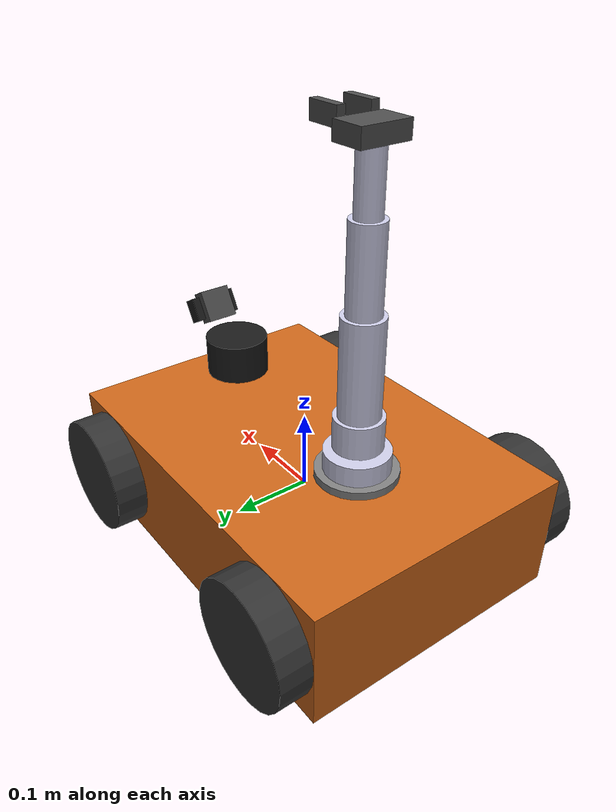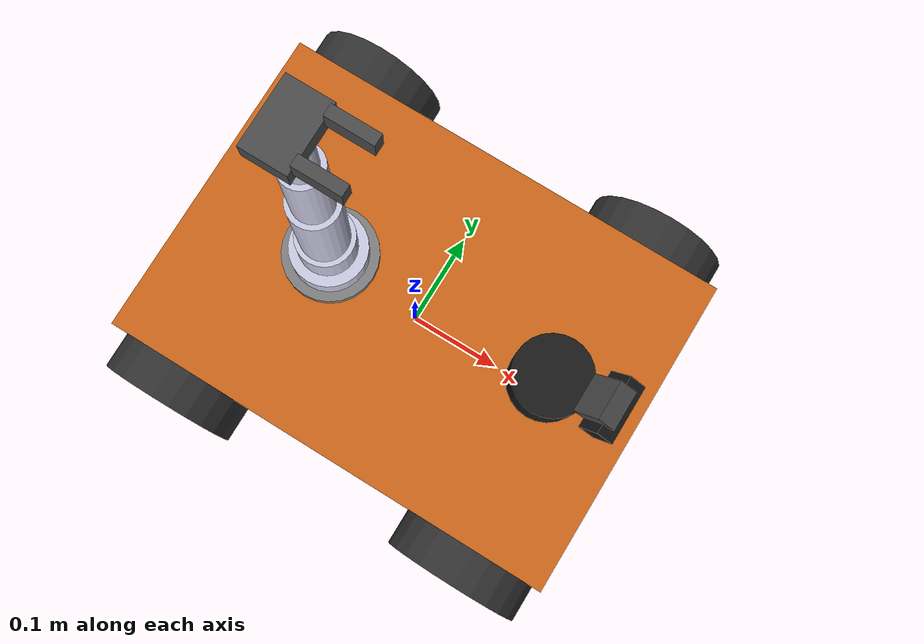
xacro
<?xml version="1.0"?>
<robot name="mobile_manipulator" xmlns:xacro="http://www.ros.org/wiki/xacro">

  <!-- Arguments -->
  <xacro:arg name="sim_mode" default="false"/>
  <xacro:property name="sim_mode" value="$(arg sim_mode)"/>
  <xacro:arg name="base_serial_port" default="/dev/ttyACM0"/>
  <xacro:arg name="arm_serial_port" default="/dev/ttyACM1"/>

  <!-- Include component xacros -->
  <xacro:include filename="$(find mobile_manipulator_description)/urdf/base.urdf.xacro"/>
  <xacro:include filename="$(find mobile_manipulator_description)/urdf/arm.urdf.xacro"/>
  <xacro:include filename="$(find mobile_manipulator_description)/urdf/camera.urdf.xacro"/>
  <xacro:include filename="$(find mobile_manipulator_description)/urdf/ros2_control.urdf.xacro"/>

  <!-- Conditional Gazebo plugins -->
  <xacro:if value="${sim_mode}">
    <xacro:include filename="$(find mobile_manipulator_description)/urdf/gazebo.urdf.xacro"/>
  </xacro:if>

</robot>

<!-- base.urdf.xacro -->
<robot xmlns:xacro="http://www.ros.org/wiki/xacro">

  <!-- ===================== PROPERTIES ===================== -->
  <xacro:property name="base_length" value="0.5"/>
  <xacro:property name="base_width" value="0.35"/>
  <xacro:property name="base_height" value="0.15"/>
  <xacro:property name="wheel_radius" value="0.075"/>
  <xacro:property name="wheel_width" value="0.04"/>
  <xacro:property name="wheel_separation" value="0.35"/>
  <xacro:property name="wheel_base" value="0.35"/>

  <!-- ===================== INERTIA MACROS ===================== -->
  <xacro:macro name="box_inertia" params="m x y z">
    <inertia ixx="${m*(y*y+z*z)/12.0}" ixy="0.0" ixz="0.0"
             iyy="${m*(x*x+z*z)/12.0}" iyz="0.0"
             izz="${m*(x*x+y*y)/12.0}"/>
  </xacro:macro>

  <xacro:macro name="cylinder_inertia" params="m r h">
    <inertia ixx="${m*(3*r*r+h*h)/12.0}" ixy="0.0" ixz="0.0"
             iyy="${m*(3*r*r+h*h)/12.0}" iyz="0.0"
             izz="${m*r*r/2.0}"/>
  </xacro:macro>

  <!-- ===================== WHEEL MACRO ===================== -->
  <xacro:macro name="wheel" params="prefix x_offset y_offset">
    <joint name="${prefix}_joint" type="continuous">
      <parent link="body_link"/>
      <child link="${prefix}_link"/>
      <origin xyz="${x_offset} ${y_offset} 0" rpy="${-pi/2} 0 0"/>
      <axis xyz="0 0 1"/>
      <dynamics damping="0.1" friction="0.1"/>
    </joint>

    <link name="${prefix}_link">
      <visual>
        <geometry>
          <cylinder radius="${wheel_radius}" length="${wheel_width}"/>
        </geometry>
        <material name="wheel_material">
          <color rgba="0.2 0.2 0.2 1.0"/>
        </material>
      </visual>
      <collision>
        <geometry>
          <cylinder radius="${wheel_radius}" length="${wheel_width}"/>
        </geometry>
      </collision>
      <inertial>
        <mass value="0.5"/>
        <xacro:cylinder_inertia m="0.5" r="${wheel_radius}" h="${wheel_width}"/>
      </inertial>
    </link>
  </xacro:macro>

  <!-- ===================== BODY LINK ===================== -->
  <link name="body_link">
    <visual>
      <geometry>
        <box size="${base_length} ${base_width} ${base_height}"/>
      </geometry>
      <material name="base_material">
        <color rgba="0.8 0.4 0.1 1.0"/>
      </material>
    </visual>
    <collision>
      <geometry>
        <box size="${base_length} ${base_width} ${base_height}"/>
      </geometry>
    </collision>
    <inertial>
      <mass value="10.0"/>
      <xacro:box_inertia m="10.0" x="${base_length}" y="${base_width}" z="${base_height}"/>
    </inertial>
  </link>

  <!-- ===================== WHEELS ===================== -->
  <xacro:wheel prefix="front_left" x_offset="${wheel_base/2}" y_offset="${wheel_separation/2 + wheel_width/2}"/>
  <xacro:wheel prefix="front_right" x_offset="${wheel_base/2}" y_offset="${-wheel_separation/2 - wheel_width/2}"/>
  <xacro:wheel prefix="back_left" x_offset="${-wheel_base/2}" y_offset="${wheel_separation/2 + wheel_width/2}"/>
  <xacro:wheel prefix="back_right" x_offset="${-wheel_base/2}" y_offset="${-wheel_separation/2 - wheel_width/2}"/>

  <!-- ===================== ARM MOUNT ===================== -->
  <!--
    LEARNING: The arm_mount_link is where the arm attaches.
    This creates a clear separation between base and arm TF chains.
  -->
  <joint name="arm_mount_joint" type="fixed">
    <parent link="body_link"/>
    <child link="arm_mount_link"/>
    <origin xyz="-0.1 0 ${base_height/2}" rpy="0 0 0"/>
  </joint>

  <link name="arm_mount_link">
    <visual>
      <geometry>
        <cylinder radius="0.05" length="0.02"/>
      </geometry>
      <material name="mount_material">
        <color rgba="0.5 0.5 0.5 1.0"/>
      </material>
    </visual>
    <collision>
      <geometry>
        <cylinder radius="0.05" length="0.02"/>
      </geometry>
    </collision>
    <inertial>
      <mass value="0.1"/>
      <xacro:cylinder_inertia m="0.1" r="0.05" h="0.02"/>
    </inertial>
  </link>

  <!-- ===================== CAMERA MOUNT ===================== -->
  <!--
    LEARNING: Camera is eye-to-base (fixed on body).
    This provides a stable view of the workspace.
  -->
  <joint name="camera_mount_joint" type="fixed">
    <parent link="body_link"/>
    <child link="camera_mount_link"/>
    <origin xyz="${base_length/2 - 0.05} 0 ${base_height/2 + 0.1}" rpy="0 ${pi/6} 0"/>
  </joint>

  <link name="camera_mount_link">
    <visual>
      <geometry>
        <box size="0.02 0.04 0.04"/>
      </geometry>
      <material name="camera_mount_mat">
        <color rgba="0.3 0.3 0.3 1.0"/>
      </material>
    </visual>
    <inertial>
      <mass value="0.05"/>
      <xacro:box_inertia m="0.05" x="0.02" y="0.04" z="0.04"/>
    </inertial>
  </link>

  <!-- ===================== LIDAR MOUNT ===================== -->
  <joint name="lidar_joint" type="fixed">
    <parent link="body_link"/>
    <child link="laser_frame"/>
    <origin xyz="${base_length/2 - 0.1} 0 ${base_height/2 + 0.05}" rpy="0 0 0"/>
  </joint>

  <link name="laser_frame">
    <visual>
      <geometry>
        <cylinder radius="0.04" length="0.05"/>
      </geometry>
      <material name="lidar_mat">
        <color rgba="0.1 0.1 0.1 1.0"/>
      </material>
    </visual>
    <inertial>
      <mass value="0.2"/>
      <xacro:cylinder_inertia m="0.2" r="0.04" h="0.05"/>
    </inertial>
  </link>

</robot>

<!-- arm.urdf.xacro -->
<robot xmlns:xacro="http://www.ros.org/wiki/xacro">

  <!-- ===================== PROPERTIES ===================== -->
  <xacro:property name="link_1_length" value="0.04"/>
  <xacro:property name="link_2_length" value="0.12"/>
  <xacro:property name="link_3_length" value="0.10"/>
  <xacro:property name="link_4_length" value="0.08"/>

  <!-- ===================== INERTIA MACROS ===================== -->
  <xacro:macro name="arm_cylinder_inertia" params="m r h">
    <inertia ixx="${m*(3*r*r+h*h)/12.0}" ixy="0.0" ixz="0.0"
             iyy="${m*(3*r*r+h*h)/12.0}" iyz="0.0"
             izz="${m*r*r/2.0}"/>
  </xacro:macro>

  <!-- ===================== ARM BASE ===================== -->
  <joint name="arm_base_joint" type="fixed">
    <parent link="arm_mount_link"/>
    <child link="arm_base_link"/>
    <origin xyz="0 0 0.01" rpy="0 0 0"/>
  </joint>

  <link name="arm_base_link">
    <visual>
      <geometry>
        <cylinder radius="0.04" length="0.05"/>
      </geometry>
      <material name="arm_material">
        <color rgba="0.8 0.8 0.9 1.0"/>
      </material>
    </visual>
    <collision>
      <geometry>
        <cylinder radius="0.04" length="0.05"/>
      </geometry>
    </collision>
    <inertial>
      <mass value="0.1"/>
      <xacro:arm_cylinder_inertia m="0.1" r="0.04" h="0.05"/>
    </inertial>
  </link>

  <!-- ===================== JOINT 1: Base Rotation (Z) ===================== -->
  <joint name="joint_1" type="revolute">
    <parent link="arm_base_link"/>
    <child link="link_1"/>
    <origin xyz="0 0 0.03" rpy="0 0 0"/>
    <axis xyz="0 0 1"/>
    <limit lower="${-pi}" upper="${pi}" effort="10.0" velocity="2.0"/>
  </joint>

  <link name="link_1">
    <visual>
      <origin xyz="0 0 ${link_1_length/2}" rpy="0 0 0"/>
      <geometry>
        <cylinder radius="0.03" length="${link_1_length}"/>
      </geometry>
      <material name="arm_material"/>
    </visual>
    <collision>
      <origin xyz="0 0 ${link_1_length/2}" rpy="0 0 0"/>
      <geometry>
        <cylinder radius="0.03" length="${link_1_length}"/>
      </geometry>
    </collision>
    <inertial>
      <mass value="0.08"/>
      <origin xyz="0 0 ${link_1_length/2}" rpy="0 0 0"/>
      <xacro:arm_cylinder_inertia m="0.08" r="0.03" h="${link_1_length}"/>
    </inertial>
  </link>

  <!-- ===================== JOINT 2: Shoulder Pitch (Y) ===================== -->
  <joint name="joint_2" type="revolute">
    <parent link="link_1"/>
    <child link="link_2"/>
    <origin xyz="0 0 ${link_1_length}" rpy="0 0 0"/>
    <axis xyz="0 1 0"/>
    <limit lower="${-pi/2}" upper="${pi/2}" effort="10.0" velocity="2.0"/>
  </joint>

  <link name="link_2">
    <visual>
      <origin xyz="0 0 ${link_2_length/2}" rpy="0 0 0"/>
      <geometry>
        <cylinder radius="0.025" length="${link_2_length}"/>
      </geometry>
      <material name="arm_material"/>
    </visual>
    <collision>
      <origin xyz="0 0 ${link_2_length/2}" rpy="0 0 0"/>
      <geometry>
        <cylinder radius="0.025" length="${link_2_length}"/>
      </geometry>
    </collision>
    <inertial>
      <mass value="0.06"/>
      <origin xyz="0 0 ${link_2_length/2}" rpy="0 0 0"/>
      <xacro:arm_cylinder_inertia m="0.06" r="0.025" h="${link_2_length}"/>
    </inertial>
  </link>

  <!-- ===================== JOINT 3: Elbow Pitch (Y) ===================== -->
  <joint name="joint_3" type="revolute">
    <parent link="link_2"/>
    <child link="link_3"/>
    <origin xyz="0 0 ${link_2_length}" rpy="0 0 0"/>
    <axis xyz="0 1 0"/>
    <limit lower="${-pi/2}" upper="${pi/2}" effort="10.0" velocity="2.0"/>
  </joint>

  <link name="link_3">
    <visual>
      <origin xyz="0 0 ${link_3_length/2}" rpy="0 0 0"/>
      <geometry>
        <cylinder radius="0.02" length="${link_3_length}"/>
      </geometry>
      <material name="arm_material"/>
    </visual>
    <collision>
      <origin xyz="0 0 ${link_3_length/2}" rpy="0 0 0"/>
      <geometry>
        <cylinder radius="0.02" length="${link_3_length}"/>
      </geometry>
    </collision>
    <inertial>
      <mass value="0.05"/>
      <origin xyz="0 0 ${link_3_length/2}" rpy="0 0 0"/>
      <xacro:arm_cylinder_inertia m="0.05" r="0.02" h="${link_3_length}"/>
    </inertial>
  </link>

  <!-- ===================== JOINT 4: Wrist Pitch (Y) ===================== -->
  <joint name="joint_4" type="revolute">
    <parent link="link_3"/>
    <child link="link_4"/>
    <origin xyz="0 0 ${link_3_length}" rpy="0 0 0"/>
    <axis xyz="0 1 0"/>
    <limit lower="${-pi/2}" upper="${pi/2}" effort="5.0" velocity="2.0"/>
  </joint>

  <link name="link_4">
    <visual>
      <origin xyz="0 0 ${link_4_length/2}" rpy="0 0 0"/>
      <geometry>
        <cylinder radius="0.015" length="${link_4_length}"/>
      </geometry>
      <material name="arm_material"/>
    </visual>
    <collision>
      <origin xyz="0 0 ${link_4_length/2}" rpy="0 0 0"/>
      <geometry>
        <cylinder radius="0.015" length="${link_4_length}"/>
      </geometry>
    </collision>
    <inertial>
      <mass value="0.04"/>
      <origin xyz="0 0 ${link_4_length/2}" rpy="0 0 0"/>
      <xacro:arm_cylinder_inertia m="0.04" r="0.015" h="${link_4_length}"/>
    </inertial>
  </link>

  <!-- ===================== GRIPPER BASE JOINT: Wrist Rotation (Z) ===================== -->
  <joint name="gripper_base_joint" type="revolute">
    <parent link="link_4"/>
    <child link="gripper_base_link"/>
    <origin xyz="0 0 ${link_4_length}" rpy="0 0 0"/>
    <axis xyz="0 0 1"/>
    <limit lower="${-pi}" upper="${pi}" effort="5.0" velocity="2.0"/>
  </joint>

  <link name="gripper_base_link">
    <visual>
      <geometry>
        <box size="0.04 0.06 0.02"/>
      </geometry>
      <material name="gripper_material">
        <color rgba="0.3 0.3 0.3 1.0"/>
      </material>
    </visual>
    <collision>
      <geometry>
        <box size="0.04 0.06 0.02"/>
      </geometry>
    </collision>
    <inertial>
      <mass value="0.03"/>
      <inertia ixx="0.0001" ixy="0" ixz="0" iyy="0.0001" iyz="0" izz="0.0001"/>
    </inertial>
  </link>

  <!-- ===================== GRIPPER: Left Gear (Actuated) ===================== -->
  <joint name="left_gear_joint" type="revolute">
    <parent link="gripper_base_link"/>
    <child link="left_finger_link"/>
    <origin xyz="0.02 0.02 0.01" rpy="0 0 0"/>
    <axis xyz="0 0 1"/>
    <limit lower="0" upper="1.0" effort="5.0" velocity="1.0"/>
  </joint>

  <link name="left_finger_link">
    <visual>
      <origin xyz="0.02 0 0" rpy="0 0 0"/>
      <geometry>
        <box size="0.04 0.01 0.02"/>
      </geometry>
      <material name="gripper_material"/>
    </visual>
    <collision>
      <origin xyz="0.02 0 0" rpy="0 0 0"/>
      <geometry>
        <box size="0.04 0.01 0.02"/>
      </geometry>
    </collision>
    <inertial>
      <mass value="0.01"/>
      <inertia ixx="0.00001" ixy="0" ixz="0" iyy="0.00001" iyz="0" izz="0.00001"/>
    </inertial>
  </link>

  <!-- ===================== GRIPPER: Right Gear (Mimic) ===================== -->
  <!--
    LEARNING: Mimic joints follow another joint with a multiplier.
    This is how parallel gripper fingers work.
  -->
  <joint name="right_gear_joint" type="revolute">
    <parent link="gripper_base_link"/>
    <child link="right_finger_link"/>
    <origin xyz="0.02 -0.02 0.01" rpy="0 0 0"/>
    <axis xyz="0 0 1"/>
    <limit lower="-1.0" upper="0" effort="5.0" velocity="1.0"/>
    <mimic joint="left_gear_joint" multiplier="-1" offset="0"/>
  </joint>

  <link name="right_finger_link">
    <visual>
      <origin xyz="0.02 0 0" rpy="0 0 0"/>
      <geometry>
        <box size="0.04 0.01 0.02"/>
      </geometry>
      <material name="gripper_material"/>
    </visual>
    <collision>
      <origin xyz="0.02 0 0" rpy="0 0 0"/>
      <geometry>
        <box size="0.04 0.01 0.02"/>
      </geometry>
    </collision>
    <inertial>
      <mass value="0.01"/>
      <inertia ixx="0.00001" ixy="0" ixz="0" iyy="0.00001" iyz="0" izz="0.00001"/>
    </inertial>
  </link>

  <!-- ===================== TOOL FRAME ===================== -->
  <!--
    LEARNING: tool_frame is the grasp point for MoveIt planning.
    All grasp poses are defined relative to this frame.
  -->
  <joint name="tool_joint" type="fixed">
    <parent link="gripper_base_link"/>
    <child link="tool_frame"/>
    <origin xyz="0.06 0 0.01" rpy="0 0 0"/>
  </joint>

  <link name="tool_frame">
    <!-- Virtual frame, no geometry -->
  </link>

</robot>

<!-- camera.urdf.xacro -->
<robot xmlns:xacro="http://www.ros.org/wiki/xacro">

  <!-- ===================== CAMERA LINK ===================== -->
  <joint name="camera_joint" type="fixed">
    <parent link="camera_mount_link"/>
    <child link="camera_link"/>
    <origin xyz="0.01 0 0" rpy="0 0 0"/>
  </joint>

  <link name="camera_link">
    <visual>
      <geometry>
        <box size="0.02 0.06 0.03"/>
      </geometry>
      <material name="camera_mat">
        <color rgba="0.1 0.1 0.1 1.0"/>
      </material>
    </visual>
    <collision>
      <geometry>
        <box size="0.02 0.06 0.03"/>
      </geometry>
    </collision>
    <inertial>
      <mass value="0.05"/>
      <inertia ixx="0.00001" ixy="0" ixz="0" iyy="0.00001" iyz="0" izz="0.00001"/>
    </inertial>
  </link>

  <!-- ===================== CAMERA OPTICAL FRAME ===================== -->
  <joint name="camera_optical_joint" type="fixed">
    <parent link="camera_link"/>
    <child link="camera_link_optical"/>
    <origin xyz="0 0 0" rpy="${-pi/2} 0 ${-pi/2}"/>
  </joint>

  <link name="camera_link_optical">
    <!-- Virtual frame for image processing -->
  </link>

</robot>
